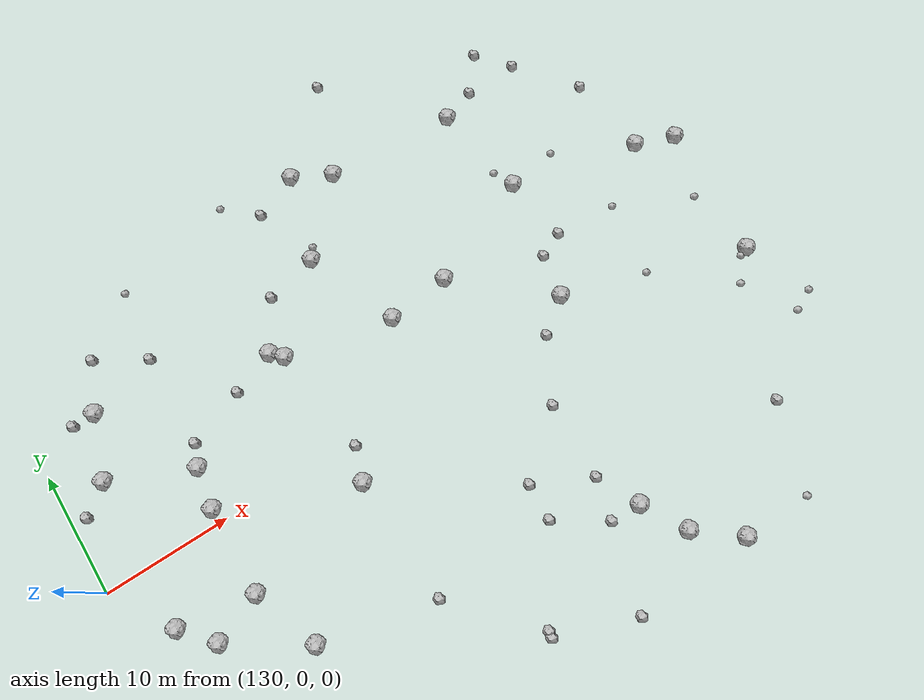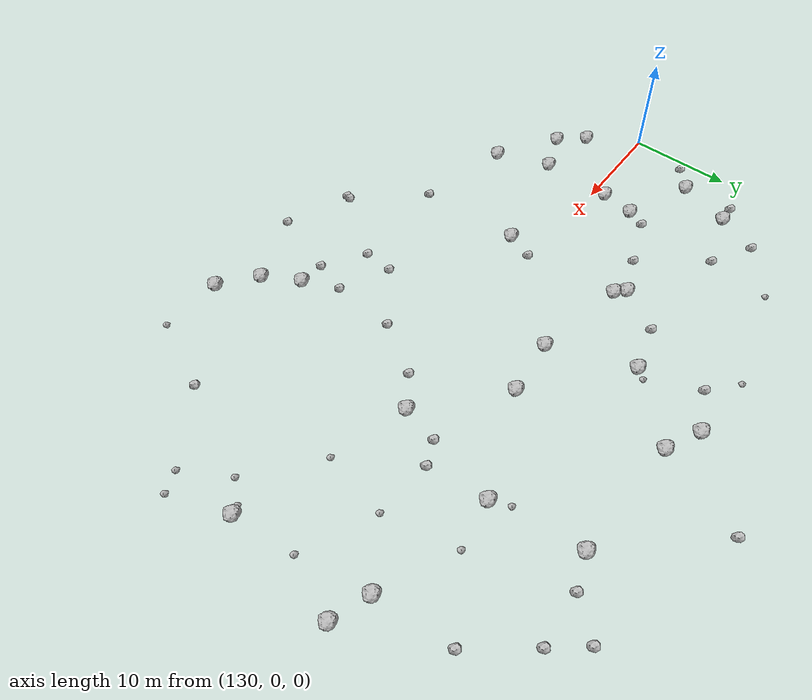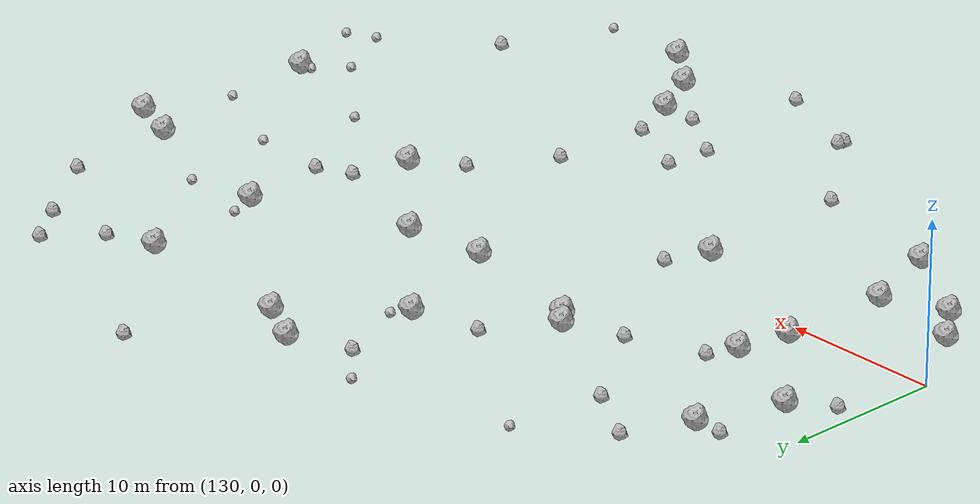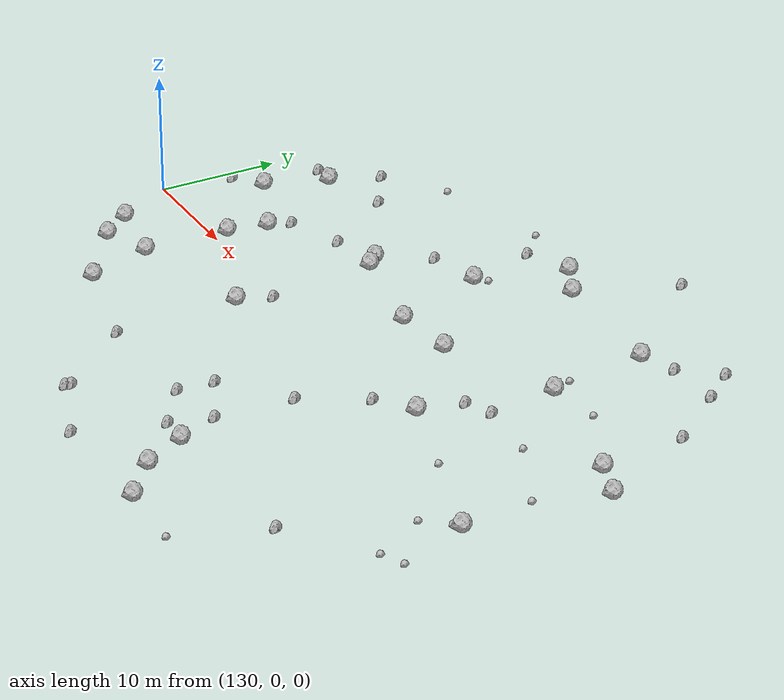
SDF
<sdf version="1.6">
 <world name="default">
  <include><uri>model://sun</uri></include>
  <model name="rock1_4_2">
   <include><uri>model://rock1</uri><pose>139.47780821749438 1.169806056184278 0.5 0 0 0</pose></include>
  </model>
  <model name="rock1_4_3">
   <include><uri>model://rock1</uri><pose>139.26214206594526 -5.915806484707225 0.5 0 0 0</pose></include>
  </model>
  <model name="rock1_4_4">
   <include><uri>model://rock1</uri><pose>155.85380344176366 14.453063399440992 0.5 0 0 0</pose></include>
  </model>
  <model name="rock1_4_5">
   <include><uri>model://rock1</uri><pose>187.6902103355352 7.46223399303161 0.5 0 0 0</pose></include>
  </model>
  <model name="rock1_4_6">
   <include><uri>model://rock1</uri><pose>171.17679077550815 0.9152318514291409 0.5 0 0 0</pose></include>
  </model>
  <model name="rock1_4_7">
   <include><uri>model://rock1</uri><pose>166.60259567092118 -15.852383050546187 0.5 0 0 0</pose></include>
  </model>
  <model name="rock1_4_8">
   <include><uri>model://rock1</uri><pose>184.3830256853498 8.680245566415735 0.5 0 0 0</pose></include>
  </model>
  <model name="rock1_4_9">
   <include><uri>model://rock1</uri><pose>141.16526507889705 -11.30269384455751 0.5 0 0 0</pose></include>
  </model>
  <model name="rock1_4_10">
   <include><uri>model://rock1</uri><pose>149.03485698598007 9.38708777143708 0.5 0 0 0</pose></include>
  </model>
  <model name="rock1_4_11">
   <include><uri>model://rock1</uri><pose>133.54874974123723 7.421599937679169 0.5 0 0 0</pose></include>
  </model>
  <model name="rock1_4_12">
   <include><uri>model://rock1</uri><pose>168.54140312652237 -19.34065429588255 0.5 0 0 0</pose></include>
  </model>
  <model name="rock1_4_13">
   <include><uri>model://rock1</uri><pose>164.07342272929088 7.1993471905041915 0.5 0 0 0</pose></include>
  </model>
  <model name="rock1_4_14">
   <include><uri>model://rock1</uri><pose>133.24364829654047 -4.933265709262223 0.5 0 0 0</pose></include>
  </model>
  <model name="rock1_4_15">
   <include><uri>model://rock1</uri><pose>186.3544167358461 -3.907022729179886 0.5 0 0 0</pose></include>
  </model>
  <model name="rock1_4_16">
   <include><uri>model://rock1</uri><pose>158.1450358179345 21.737497796625178 0.5 0 0 0</pose></include>
  </model>
  <model name="rock1_4_17">
   <include><uri>model://rock1</uri><pose>135.35736394610674 -7.434163793320742 0.5 0 0 0</pose></include>
  </model>
  <model name="rock1_4_18">
   <include><uri>model://rock1</uri><pose>161.29650732972135 20.11327327376422 0.5 0 0 0</pose></include>
  </model>
  <model name="rock1_4_19">
   <include><uri>model://rock1</uri><pose>173.5164153948975 11.164522133450717 0.5 0 0 0</pose></include>
  </model>
  <model name="rock1_4_20">
   <include><uri>model://rock1</uri><pose>149.99227499640114 -3.240841777007123 0.5 0 0 0</pose></include>
  </model>
  <model name="rock1_4_21">
   <include><uri>model://rock1</uri><pose>140.05433929194467 4.497859004308026 0.5 0 0 0</pose></include>
  </model>
  <model name="rock1_4_22">
   <include><uri>model://rock1</uri><pose>171.86544317166812 -22.054764447627708 0.5 0 0 0</pose></include>
  </model>
  <model name="rock1_4_23">
   <include><uri>model://rock1</uri><pose>149.92208035013425 8.482290664552664 0.5 0 0 0</pose></include>
  </model>
  <model name="rock1_4_24">
   <include><uri>model://rock1</uri><pose>135.28891658029573 12.50324253958928 0.5 0 0 0</pose></include>
  </model>
  <model name="rock1_4_25">
   <include><uri>model://rock1</uri><pose>158.770521066654 6.630887168325074 0.5 0 0 0</pose></include>
  </model>
  <model name="rock1_4_26">
   <include><uri>model://rock1</uri><pose>172.31341848469535 19.426047783459445 0.5 0 0 0</pose></include>
  </model>
  <model name="rock2_4_0">
   <include><uri>model://rock2</uri><pose>179.86468833001942 20.7298725097705 0.3 0 0 0</pose></include>
  </model>
  <model name="rock2_4_1">
   <include><uri>model://rock2</uri><pose>183.67123694895707 15.811639498923931 0.3 0 0 0</pose></include>
  </model>
  <model name="rock2_4_2">
   <include><uri>model://rock2</uri><pose>171.97172011504114 4.527169412729712 0.3 0 0 0</pose></include>
  </model>
  <model name="rock2_4_3">
   <include><uri>model://rock2</uri><pose>177.66755611981276 23.461988060522494 0.3 0 0 0</pose></include>
  </model>
  <model name="rock2_4_4">
   <include><uri>model://rock2</uri><pose>161.9338919005059 -22.403421988983432 0.3 0 0 0</pose></include>
  </model>
  <model name="rock2_4_5">
   <include><uri>model://rock2</uri><pose>151.43429898322745 13.416963087084888 0.3 0 0 0</pose></include>
  </model>
  <model name="rock2_4_6">
   <include><uri>model://rock2</uri><pose>155.70437918890406 -19.60529500750105 0.3 0 0 0</pose></include>
  </model>
  <model name="rock2_4_7">
   <include><uri>model://rock2</uri><pose>165.45462373665356 -6.121579670112528 0.3 0 0 0</pose></include>
  </model>
  <model name="rock2_4_8">
   <include><uri>model://rock2</uri><pose>164.41613799679885 28.135757517013673 0.3 0 0 0</pose></include>
  </model>
  <model name="rock2_4_9">
   <include><uri>model://rock2</uri><pose>174.13681402812148 5.502307012359445 0.3 0 0 0</pose></include>
  </model>
  <model name="rock2_4_10">
   <include><uri>model://rock2</uri><pose>133.3781189943197 12.505766432212106 0.3 0 0 0</pose></include>
  </model>
  <model name="rock2_4_11">
   <include><uri>model://rock2</uri><pose>154.2906730508696 20.196721073134754 0.3 0 0 0</pose></include>
  </model>
  <model name="rock2_4_12">
   <include><uri>model://rock2</uri><pose>175.23396531740568 20.519066946624235 0.3 0 0 0</pose></include>
  </model>
  <model name="rock2_4_13">
   <include><uri>model://rock2</uri><pose>160.45816120786694 -10.176491655013315 0.3 0 0 0</pose></include>
  </model>
  <model name="rock2_4_14">
   <include><uri>model://rock2</uri><pose>140.83578275139024 14.132068345828827 0.3 0 0 0</pose></include>
  </model>
  <model name="rock2_4_15">
   <include><uri>model://rock2</uri><pose>131.215254651523 5.680468099852604 0.3 0 0 0</pose></include>
  </model>
  <model name="rock2_4_16">
   <include><uri>model://rock2</uri><pose>136.9389260576402 16.499038037992236 0.3 0 0 0</pose></include>
  </model>
  <model name="rock2_4_17">
   <include><uri>model://rock2</uri><pose>140.67963752847757 6.296145468136338 0.3 0 0 0</pose></include>
  </model>
  <model name="rock2_4_18">
   <include><uri>model://rock2</uri><pose>160.2247796300484 -13.140114538694014 0.3 0 0 0</pose></include>
  </model>
  <model name="rock2_4_19">
   <include><uri>model://rock2</uri><pose>164.09417529810693 -15.731624795909623 0.3 0 0 0</pose></include>
  </model>
  <model name="rock2_4_20">
   <include><uri>model://rock2</uri><pose>150.25890074651798 -13.436414950512528 0.3 0 0 0</pose></include>
  </model>
  <model name="rock2_4_21">
   <include><uri>model://rock2</uri><pose>150.94430532301482 -0.532081211866938 0.3 0 0 0</pose></include>
  </model>
  <model name="rock2_4_22">
   <include><uri>model://rock2</uri><pose>145.3387720821473 8.03492670200697 0.3 0 0 0</pose></include>
  </model>
  <model name="rock2_4_23">
   <include><uri>model://rock2</uri><pose>180.3638583411214 -15.207700739754952 0.3 0 0 0</pose></include>
  </model>
  <model name="rock2_4_24">
   <include><uri>model://rock2</uri><pose>165.0451408643694 -12.434863468726316 0.3 0 0 0</pose></include>
  </model>
  <model name="rock2_4_25">
   <include><uri>model://rock2</uri><pose>155.61262780842776 -20.05325146513483 0.3 0 0 0</pose></include>
  </model>
  <model name="rock2_4_26">
   <include><uri>model://rock2</uri><pose>168.30336871874314 -1.1874252581983384 0.3 0 0 0</pose></include>
  </model>
  <model name="rock3_4_0">
   <include><uri>model://rock3</uri><pose>178.22380883039438 -1.2222295746107008 0.2 0 0 0</pose></include>
  </model>
  <model name="rock3_4_1">
   <include><uri>model://rock3</uri><pose>185.67822235930797 2.0486293861872014 0.2 0 0 0</pose></include>
  </model>
  <model name="rock3_4_2">
   <include><uri>model://rock3</uri><pose>185.62571137893906 -4.225332308224019 0.2 0 0 0</pose></include>
  </model>
  <model name="rock3_4_3">
   <include><uri>model://rock3</uri><pose>151.70866855127923 22.48927659635895 0.2 0 0 0</pose></include>
  </model>
  <model name="rock3_4_4">
   <include><uri>model://rock3</uri><pose>186.53225142714786 -10.395944065810966 0.2 0 0 0</pose></include>
  </model>
  <model name="rock3_4_5">
   <include><uri>model://rock3</uri><pose>177.83731952117648 11.862156172880255 0.2 0 0 0</pose></include>
  </model>
  <model name="rock3_4_6">
   <include><uri>model://rock3</uri><pose>172.73955147171833 12.928024343378794 0.2 0 0 0</pose></include>
  </model>
  <model name="rock3_4_7">
   <include><uri>model://rock3</uri><pose>179.34858833346877 5.054583199331063 0.2 0 0 0</pose></include>
  </model>
  <model name="rock3_4_8">
   <include><uri>model://rock3</uri><pose>141.6536573941992 20.089193000160122 0.2 0 0 0</pose></include>
  </model>
  <model name="rock3_4_9">
   <include><uri>model://rock3</uri><pose>188.3809237694582 -9.532649381904857 0.2 0 0 0</pose></include>
  </model>
  <model name="rock3_4_10">
   <include><uri>model://rock3</uri><pose>177.613108824169 -22.23822115763666 0.2 0 0 0</pose></include>
  </model>
  <model name="rock3_4_11">
   <include><uri>model://rock3</uri><pose>184.08716236844384 -6.133108685335628 0.2 0 0 0</pose></include>
  </model>
  <model name="rock3_4_12">
   <include><uri>model://rock3</uri><pose>156.47513501000526 15.392961801558968 0.2 0 0 0</pose></include>
  </model>
 </world>
</sdf>
